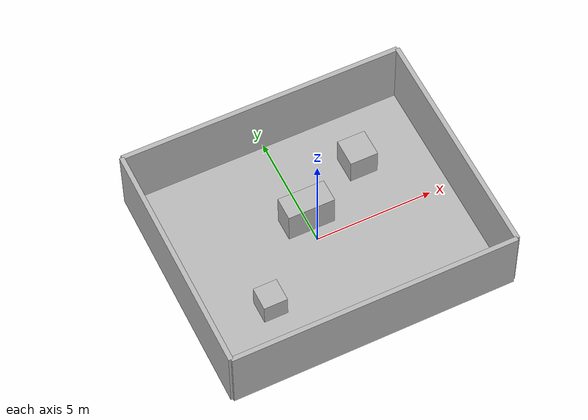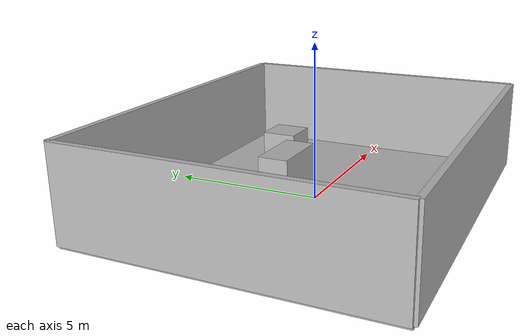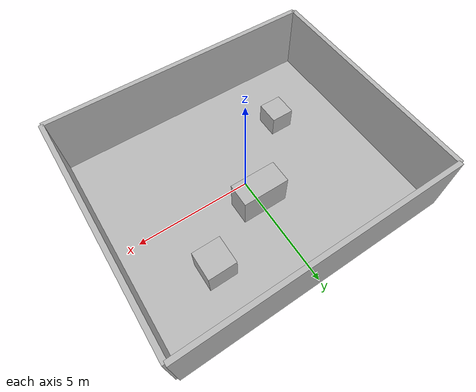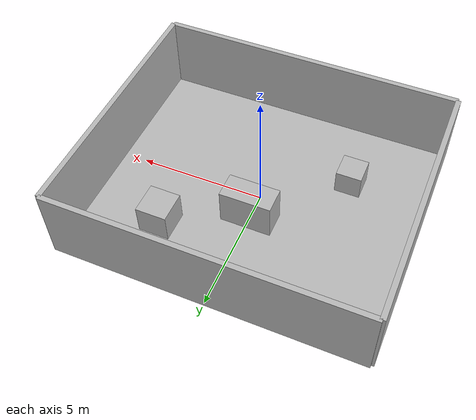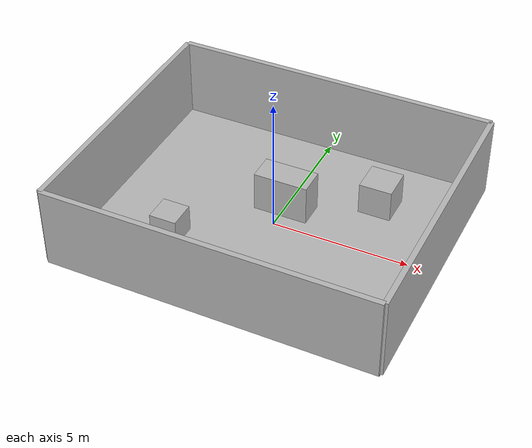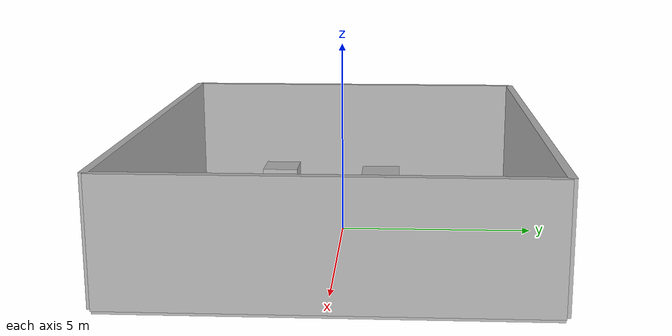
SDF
<?xml version="1.0" ?>
<sdf version="1.9">
  <world name="indoor_world">

    <plugin
      filename="gz-sim-physics-system"
      name="gz::sim::systems::Physics"/>

    <plugin
      filename="gz-sim-user-commands-system"
      name="gz::sim::systems::UserCommands"/>

    <plugin
      filename="gz-sim-scene-broadcaster-system"
      name="gz::sim::systems::SceneBroadcaster"/>

    <gravity>0 0 -9.81</gravity>

    <light type="directional" name="sun">
      <pose>0 0 10 0 0 0</pose>
      <cast_shadows>true</cast_shadows>
      <direction>-0.3 0.2 -1</direction>
      <diffuse>0.8 0.8 0.8 1</diffuse>
      <specular>0.2 0.2 0.2 1</specular>
    </light>

    <!-- FLOOR -->
    <model name="floor">
      <static>true</static>
      <pose>0 0 -0.05 0 0 0</pose>
      <link name="link">
        <collision name="collision">
          <geometry>
            <box>
              <size>12 10 0.1</size>
            </box>
          </geometry>
        </collision>
        <visual name="visual">
          <geometry>
            <box>
              <size>12 10 0.1</size>
            </box>
          </geometry>
        </visual>
      </link>
    </model>

    <!-- LEFT WALL -->
    <model name="wall_left">
      <static>true</static>
      <pose>-6 0 1.5 0 0 0</pose>
      <link name="link">
        <collision name="collision">
          <geometry>
            <box>
              <size>0.2 10 3</size>
            </box>
          </geometry>
        </collision>
        <visual name="visual">
          <geometry>
            <box>
              <size>0.2 10 3</size>
            </box>
          </geometry>
        </visual>
      </link>
    </model>

    <!-- RIGHT WALL -->
    <model name="wall_right">
      <static>true</static>
      <pose>6 0 1.5 0 0 0</pose>
      <link name="link">
        <collision name="collision">
          <geometry>
            <box>
              <size>0.2 10 3</size>
            </box>
          </geometry>
        </collision>
        <visual name="visual">
          <geometry>
            <box>
              <size>0.2 10 3</size>
            </box>
          </geometry>
        </visual>
      </link>
    </model>

    <!-- BACK WALL -->
    <model name="wall_back">
      <static>true</static>
      <pose>0 5 1.5 0 0 0</pose>
      <link name="link">
        <collision name="collision">
          <geometry>
            <box>
              <size>12 0.2 3</size>
            </box>
          </geometry>
        </collision>
        <visual name="visual">
          <geometry>
            <box>
              <size>12 0.2 3</size>
            </box>
          </geometry>
        </visual>
      </link>
    </model>

    <!-- FRONT WALL -->
    <model name="wall_front">
      <static>true</static>
      <pose>0 -5 1.5 0 0 0</pose>
      <link name="link">
        <collision name="collision">
          <geometry>
            <box>
              <size>12 0.2 3</size>
            </box>
          </geometry>
        </collision>
        <visual name="visual">
          <geometry>
            <box>
              <size>12 0.2 3</size>
            </box>
          </geometry>
        </visual>
      </link>
    </model>

    <!-- OBSTACLE 1 -->
    <model name="obstacle_1">
      <static>true</static>
      <pose>0 1 0.75 0 0 0</pose>
      <link name="link">
        <collision name="collision">
          <geometry>
            <box>
              <size>2 1 1.5</size>
            </box>
          </geometry>
        </collision>
        <visual name="visual">
          <geometry>
            <box>
              <size>2 1 1.5</size>
            </box>
          </geometry>
        </visual>
      </link>
    </model>

    <!-- OBSTACLE 2 -->
    <model name="obstacle_2">
      <static>true</static>
      <pose>-3 -2 0.5 0 0 0</pose>
      <link name="link">
        <collision name="collision">
          <geometry>
            <box>
              <size>1 1 1</size>
            </box>
          </geometry>
        </collision>
        <visual name="visual">
          <geometry>
            <box>
              <size>1 1 1</size>
            </box>
          </geometry>
        </visual>
      </link>
    </model>

    <!-- OBSTACLE 3 -->
    <model name="obstacle_3">
      <static>true</static>
      <pose>3 2.5 0.6 0 0 0</pose>
      <link name="link">
        <collision name="collision">
          <geometry>
            <box>
              <size>1.2 1.2 1.2</size>
            </box>
          </geometry>
        </collision>
        <visual name="visual">
          <geometry>
            <box>
              <size>1.2 1.2 1.2</size>
            </box>
          </geometry>
        </visual>
      </link>
    </model>

  </world>
</sdf>
